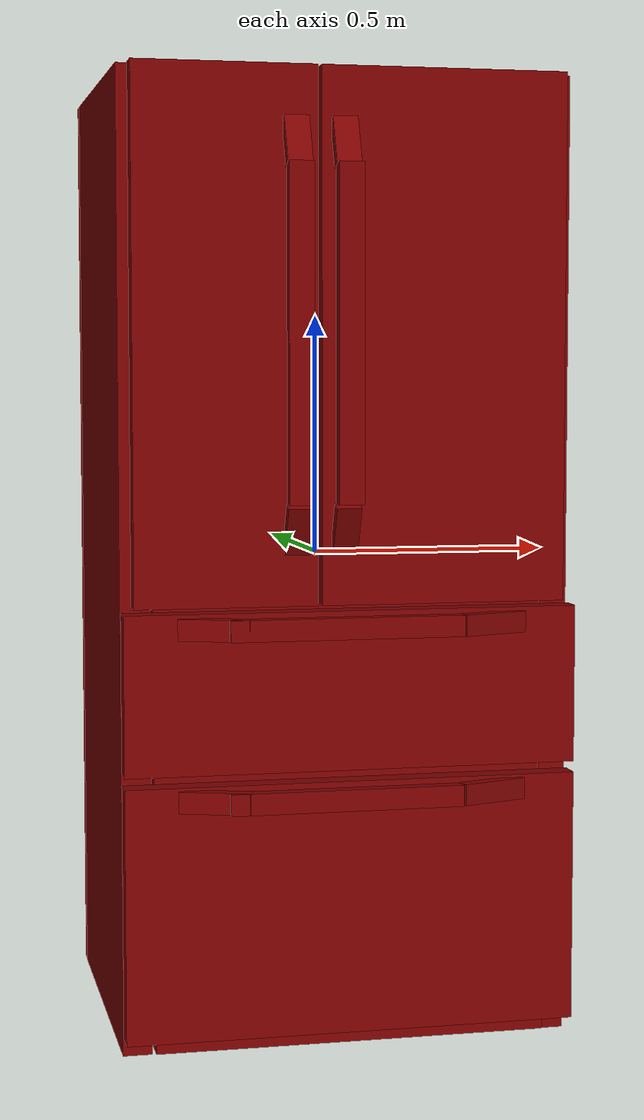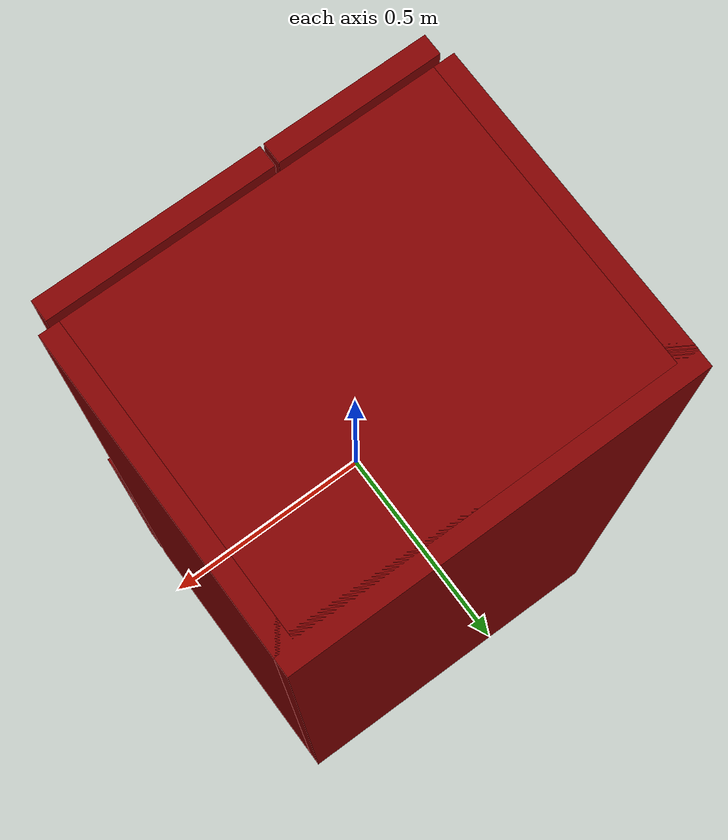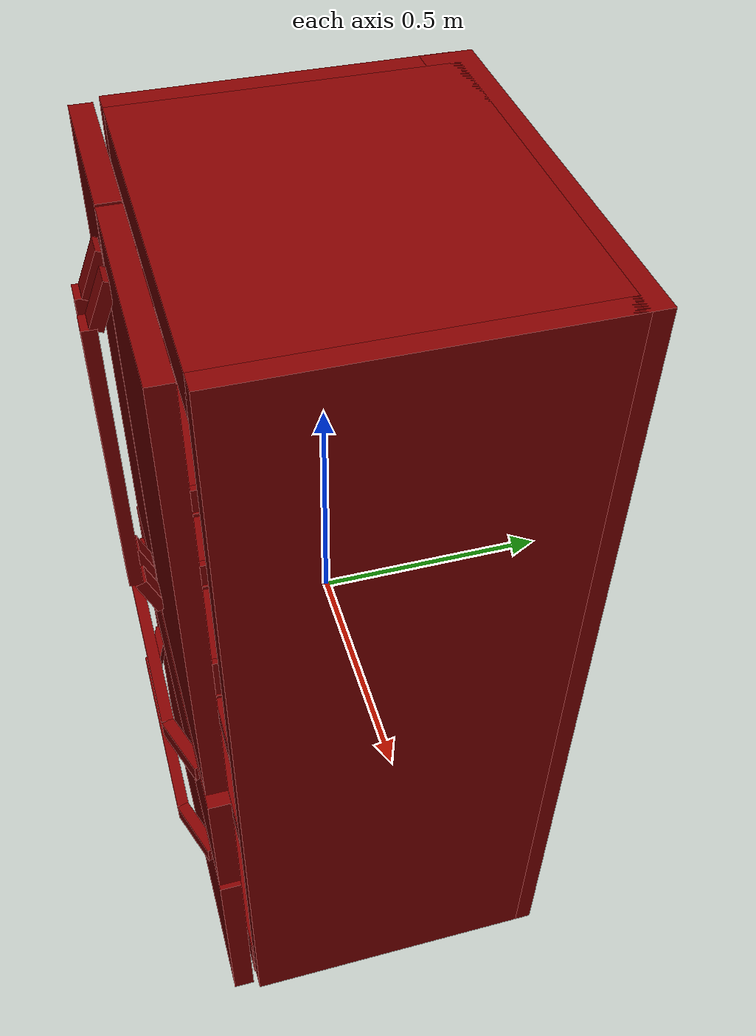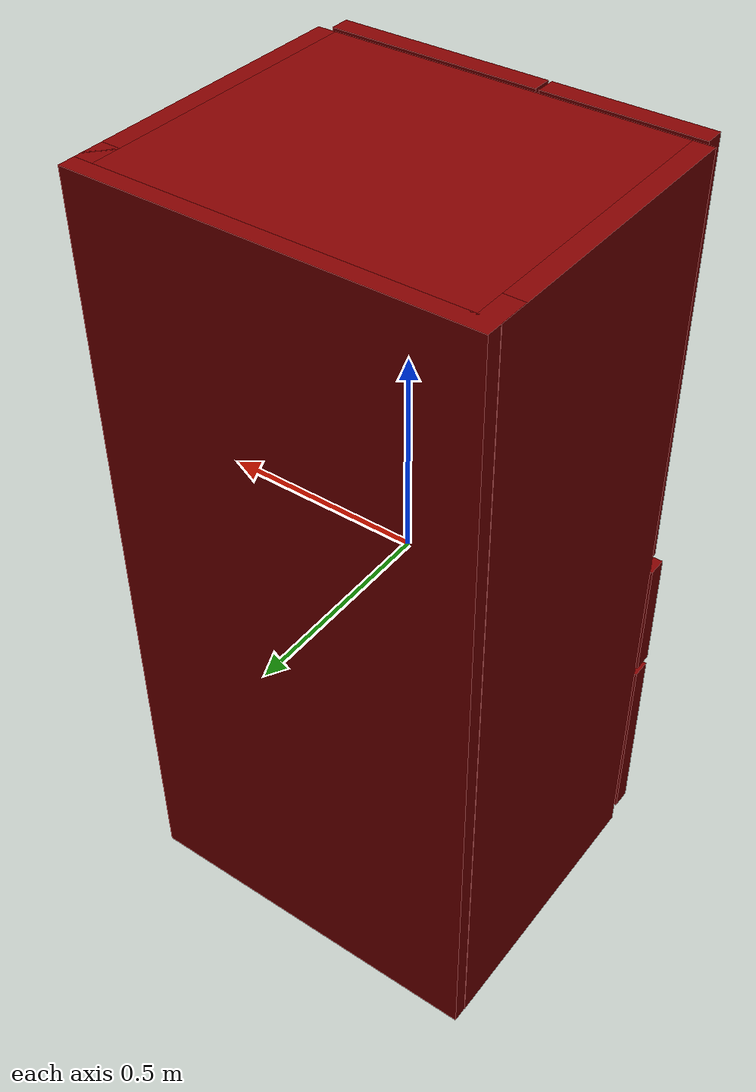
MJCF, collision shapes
<mujoco model="model">
  <compiler angle="radian"/>
  <asset>
    <mesh file="visuals/Body001.obj" name="Body001_vis"/>
    <mesh file="visuals/Body001_Clear.obj" name="Body001_Clear_vis"/>
    <mesh file="visuals/Container001.obj" name="Container001_vis"/>
    <mesh file="visuals/Container002.obj" name="Container002_vis"/>
    <mesh file="visuals/Door001.obj" name="Door001_vis"/>
    <mesh file="visuals/Door001_Clear.obj" name="Door001_Clear_vis"/>
    <mesh file="visuals/Door002.obj" name="Door002_vis"/>
    <mesh file="visuals/Door002_Clear.obj" name="Door002_Clear_vis"/>
    <mesh file="visuals/Drawer001.obj" name="Drawer001_vis"/>
    <mesh file="visuals/Drawer002.obj" name="Drawer002_vis"/>
    <texture file="visuals/T_BC001.png" name="Body001_material" type="2d"/>
    <material name="Body001_material" rgba="1 1 1 1.0" texture="Body001_material" shininess="0.141421377658844" specular="0.3103448502657381"/>
    <material name="Body001_Clear_material" rgba="0.6872242093086243 0.8047671318054199 0.805526614189148 0.2808988690376282" shininess="0.141421377658844" specular="0.3103448502657381"/>
    <texture file="visuals/T_BC001.png" name="Container001_material" type="2d"/>
    <material name="Container001_material" rgba="1 1 1 1.0" texture="Container001_material" shininess="0.141421377658844" specular="0.3103448502657381"/>
    <texture file="visuals/T_BC001.png" name="Container002_material" type="2d"/>
    <material name="Container002_material" rgba="1 1 1 1.0" texture="Container002_material" shininess="0.141421377658844" specular="0.3103448502657381"/>
    <texture file="visuals/T_BC001.png" name="Door001_material" type="2d"/>
    <material name="Door001_material" rgba="1 1 1 1.0" texture="Door001_material" shininess="0.141421377658844" specular="0.3103448502657381"/>
    <material name="Door001_Clear_material" rgba="0.6872242093086243 0.8047671318054199 0.805526614189148 0.2808988690376282" shininess="0.141421377658844" specular="0.3103448502657381"/>
    <texture file="visuals/T_BC001.png" name="Door002_material" type="2d"/>
    <material name="Door002_material" rgba="1 1 1 1.0" texture="Door002_material" shininess="0.141421377658844" specular="0.3103448502657381"/>
    <material name="Door002_Clear_material" rgba="0.6872242093086243 0.8047671318054199 0.805526614189148 0.2808988690376282" shininess="0.141421377658844" specular="0.3103448502657381"/>
    <texture file="visuals/T_BC001.png" name="Drawer001_material" type="2d"/>
    <material name="Drawer001_material" rgba="1 1 1 1.0" texture="Drawer001_material" shininess="0.141421377658844" specular="0.3103448502657381"/>
    <texture file="visuals/T_BC001.png" name="Drawer002_material" type="2d"/>
    <material name="Drawer002_material" rgba="1 1 1 1.0" texture="Drawer002_material" shininess="0.141421377658844" specular="0.3103448502657381"/>
  </asset>
  <default>
    <default class="visual">
      <geom conaffinity="0" contype="0" group="1" type="mesh"/>
    </default>
    <default class="collision">
      <geom group="0" rgba="0.5 0 0 0.5"/>
    </default>
    <default class="spawn">
      <geom group="0" rgba="1 1 1 0.5" contype="0" conaffinity="0"/>
      <site group="0" rgba="1 1 1 0.5"/>
    </default>
    <default class="region">
      <geom group="1" conaffinity="0" contype="0" rgba="0 1 0 0"/>
    </default>
  </default>
  <worldbody>
    <body>
      <body name="object">
        <geom mesh="Body001_vis" type="mesh" solimp="0.998 0.998 0.001" solref="0.001 1" density="100" friction="0.95 0.3 0.1" class="visual" material="Body001_material"/>
        <geom class="collision" type="box" pos="-0.426228 0.042858 0.000000" size="0.029605332762002945 0.3534112274646759 0.9728236794471741" quat="1.0 0.0 0.0 0.0"/>
        <geom class="collision" type="box" pos="0.428675 0.041233 -0.000000" size="0.027389300987124443 0.3517859876155853 0.9728236794471741" quat="1.0 0.0 0.0 0.0"/>
        <geom class="collision" type="box" pos="0.001378 0.041233 0.923090" size="0.41047734022140503 0.3517859876155853 0.04973379895091057" quat="1.0 0.0 0.0 0.0"/>
        <geom class="collision" type="box" pos="0.011164 0.039594 -0.900854" size="0.40069055557250977 0.3534245193004608 0.071969173848629" quat="1.0 0.0 0.0 0.0"/>
        <geom class="collision" type="box" pos="0.000511 0.377943 0.000000" size="0.4555530548095703 0.05511802062392235 0.9728236794471741" quat="1.0 0.0 0.0 0.0"/>
        <geom class="collision" type="box" pos="0.011164 0.044354 -0.086973" size="0.40069055557250977 0.34866517782211304 0.027178538963198662" quat="1.0 0.0 0.0 0.0"/>
        <geom class="collision" type="box" pos="0.011164 0.044354 -0.422489" size="0.40069055557250977 0.34866517782211304 0.03191669285297394" quat="1.0 0.0 0.0 0.0"/>
        <geom class="collision" type="box" pos="0.011164 -0.169971 0.248599" size="0.40069055557250977 0.007287968415766954 0.003665081923827529" quat="1.0 0.0 0.0 0.0"/>
        <geom class="collision" type="box" pos="0.011164 -0.169971 0.570574" size="0.40069055557250977 0.007287968415766954 0.007593526504933834" quat="1.0 0.0 0.0 0.0"/>
        <geom class="collision" type="box" pos="0.000140 0.115443 0.423252" size="0.11277630925178528 0.1857243925333023 0.008044852875173092" quat="1.0 0.0 0.0 0.0"/>
        <geom class="collision" type="box" pos="-0.149442 -0.137304 0.496726" size="0.005899970419704914 0.08722446113824844 0.0071580419316887856" quat="0.8796501159667969 -0.47562137246131897 -0.0 0.0"/>
        <geom class="collision" type="box" pos="0.149955 -0.137304 0.496726" size="0.005899970419704914 0.08722446113824844 0.0071580419316887856" quat="0.8796501159667969 -0.47562137246131897 -0.0 0.0"/>
        <body name="Body001_Clear">
          <geom mesh="Body001_Clear_vis" type="mesh" solimp="0.998 0.998 0.001" solref="0.001 1" density="100" friction="0.95 0.3 0.1" class="visual" material="Body001_Clear_material"/>
          <geom class="collision" type="box" pos="-0.001543 0.072970 0.249825" size="0.387983113527298 0.23869822919368744 0.0030660119373351336" quat="1.0 0.0 0.0 0.0"/>
          <geom class="collision" type="box" pos="0.000065 0.072970 0.572042" size="0.38637539744377136 0.23869822919368744 0.0031815222464501858" quat="1.0 0.0 0.0 0.0"/>
        </body>
        <body name="Container001">
          <joint axis="0.0 -1.0 0.0" pos="-0.210445 0.053757 0.011096" limited="true" name="Container001_joint" range="0.0 0.5" type="slide" damping="1" frictionloss="1" armature=".01" stiffness="0.05"/>
          <geom mesh="Container001_vis" type="mesh" solimp="0.998 0.998 0.001" solref="0.001 1" density="100" friction="0.95 0.3 0.1" class="visual" material="Container001_material"/>
          <geom class="collision" type="box" pos="-0.203618 0.061797 -0.052680" size="0.14834272861480713 0.21900534629821777 0.006056325510144234" quat="1.0 0.0 0.0 0.0"/>
          <geom class="collision" type="box" pos="-0.203618 0.300056 0.010038" size="0.14834271371364594 0.010062267072498798 0.06811290234327316" quat="0.9980632662773132 -0.06220714747905731 1.3812760658319826e-17 -2.86053822665894e-24"/>
          <geom class="collision" type="box" pos="-0.203618 -0.180397 0.011086" size="0.14834271371364594 0.00838586688041687 0.07160399109125137" quat="0.9852045178413391 0.17138269543647766 -3.6615682518974254e-17 -2.405807765713142e-19"/>
          <geom class="collision" type="box" pos="-0.066170 0.068536 0.010121" size="0.010894034057855606 0.23029488325119019 0.06811346858739853" quat="1.0 0.0 0.0 0.0"/>
          <geom class="collision" type="box" pos="-0.355549 0.064786 0.010417" size="0.01100264210253954 0.23404495418071747 0.06840953230857849" quat="1.0 0.0 0.0 0.0"/>
        </body>
        <body name="Container002">
          <joint axis="0.0 -1.0 0.0" pos="0.167051 0.053757 0.010132" limited="true" name="Container002_joint" range="0.0 0.5" type="slide" damping="1" frictionloss="1" armature=".01" stiffness="0.05"/>
          <geom mesh="Container002_vis" type="mesh" solimp="0.998 0.998 0.001" solref="0.001 1" density="100" friction="0.95 0.3 0.1" class="visual" material="Container002_material"/>
          <geom class="collision" type="box" pos="-0.026800 0.065866 0.009619" size="0.01053529791533947 0.2329651266336441 0.06761081516742706" quat="1.0 0.0 0.0 0.0"/>
          <geom class="collision" type="box" pos="0.360494 0.068536 0.009601" size="0.010600273497402668 0.23029488325119019 0.06759338825941086" quat="1.0 0.0 0.0 0.0"/>
          <geom class="collision" type="box" pos="0.168737 -0.182015 0.011086" size="0.2005700021982193 0.00838586688041687 0.07160399109125137" quat="0.9852721095085144 0.17099373042583466 -3.661577516320286e-17 -2.261241151563308e-19"/>
          <geom class="collision" type="box" pos="0.168737 0.300056 0.010038" size="0.2005700021982193 0.010062267072498798 0.06811290234327316" quat="0.9980632662773132 -0.06220714747905731 1.3812760658319826e-17 -2.86053822665894e-24"/>
          <geom class="collision" type="box" pos="0.168737 0.061797 -0.052680" size="0.2005700021982193 0.21900534629821777 0.006056325510144234" quat="1.0 0.0 0.0 0.0"/>
        </body>
        <body name="Door001">
          <joint axis="0.0 0.0 -1.0" pos="-0.430335 -0.350352 0.440327" limited="true" name="Door001_joint" range="0.0 1.5707963267948966" type="hinge" damping="1" frictionloss="1" armature=".01" stiffness="0.05"/>
          <geom mesh="Door001_vis" type="mesh" solimp="0.998 0.998 0.001" solref="0.001 1" density="100" friction="0.95 0.3 0.1" class="visual" material="Door001_material"/>
          <geom class="collision" type="box" pos="-0.253712 -0.347900 0.449269" size="0.1814473271369934 0.023474177345633507 0.5234969854354858" quat="1.0 0.0 0.0 0.0"/>
          <geom class="collision" type="box" pos="-0.116126 -0.418600 0.455542" size="0.024617472663521767 0.013880615122616291 0.3281586468219757" quat="1.0 0.0 0.0 0.0"/>
          <geom class="collision" type="box" pos="-0.116126 -0.388403 0.823486" size="0.02462036907672882 0.01352567970752716 0.049802325665950775" quat="0.9809927344322205 -0.19404448568820953 4.308653777996428e-17 -5.087527271977686e-24"/>
          <geom class="collision" type="box" pos="-0.116126 -0.391065 0.078423" size="0.024620363488793373 0.013525689952075481 0.04980230703949928" quat="3.0794979011261603e-07 -6.091376292260975e-08 -0.19404451549053192 0.9809927344322205"/>
          <body name="Door001_Clear">
            <geom mesh="Door001_Clear_vis" type="mesh" solimp="0.998 0.998 0.001" solref="0.001 1" density="100" friction="0.95 0.3 0.1" class="visual" material="Door001_Clear_material"/>
            <geom class="collision" type="box" pos="-0.261339 -0.286152 0.647797" size="0.11234426498413086 0.0492464080452919 0.003341684117913246" quat="1.0 0.0 0.0 0.0"/>
            <geom class="collision" type="box" pos="-0.159715 -0.280382 0.674422" size="0.006390671711415052 0.05501607805490494 0.024759508669376373" quat="1.0 0.0 0.0 0.0"/>
            <geom class="collision" type="box" pos="-0.366946 -0.280382 0.674422" size="0.004815603140741587 0.055013108998537064 0.024759508669376373" quat="1.0 0.0 0.0 0.0"/>
            <geom class="collision" type="box" pos="-0.270060 -0.227461 0.674422" size="0.10496816039085388 0.00403837114572525 0.024759508669376373" quat="1.0 0.0 0.0 0.0"/>
            <geom class="collision" type="box" pos="-0.270060 -0.227461 0.497155" size="0.10496816039085388 0.00403837114572525 0.024759508669376373" quat="1.0 0.0 0.0 0.0"/>
            <geom class="collision" type="box" pos="-0.366946 -0.280382 0.497155" size="0.004815603140741587 0.05501335859298706 0.024759508669376373" quat="1.0 0.0 0.0 0.0"/>
            <geom class="collision" type="box" pos="-0.159715 -0.280382 0.497155" size="0.006390688940882683 0.05501607805490494 0.024759508669376373" quat="1.0 0.0 0.0 0.0"/>
            <geom class="collision" type="box" pos="-0.261339 -0.286152 0.470530" size="0.11234426498413086 0.0492464080452919 0.003341684117913246" quat="1.0 0.0 0.0 0.0"/>
            <geom class="collision" type="box" pos="-0.261339 -0.286152 0.152735" size="0.11234426498413086 0.0492464080452919 0.0033416731748729944" quat="1.0 0.0 0.0 0.0"/>
            <geom class="collision" type="box" pos="-0.159715 -0.280382 0.203399" size="0.006390688940882683 0.05501607805490494 0.048799291253089905" quat="1.0 0.0 0.0 0.0"/>
            <geom class="collision" type="box" pos="-0.366946 -0.280382 0.203399" size="0.004815603140741587 0.055013787001371384 0.048799291253089905" quat="1.0 0.0 0.0 0.0"/>
            <geom class="collision" type="box" pos="-0.270060 -0.227461 0.203399" size="0.10496823489665985 0.00403837114572525 0.048799291253089905" quat="1.0 0.0 0.0 0.0"/>
          </body>
        </body>
        <body name="Door002">
          <joint axis="0.0 0.0 1.0" pos="0.425625 -0.346621 0.440327" limited="true" name="Door002_joint" range="0.0 1.5707963267948966" type="hinge" damping="1" frictionloss="1" armature=".01" stiffness="0.05"/>
          <geom mesh="Door002_vis" type="mesh" solimp="0.998 0.998 0.001" solref="0.001 1" density="100" friction="0.95 0.3 0.1" class="visual" material="Door002_material"/>
          <geom class="collision" type="box" pos="-0.018771 -0.419582 0.455542" size="0.0251767598092556 0.0148626072332263 0.32815948128700256" quat="1.0 0.0 0.0 0.0"/>
          <geom class="collision" type="box" pos="0.183201 -0.347900 0.449269" size="0.24733802676200867 0.023474089801311493 0.5235017538070679" quat="1.0 0.0 0.0 0.0"/>
          <geom class="collision" type="box" pos="-0.020416 -0.391065 0.078423" size="0.024620365351438522 0.013525689952075481 0.049802325665950775" quat="3.0794979011261603e-07 -6.091376292260975e-08 -0.19404451549053192 0.9809927344322205"/>
          <geom class="collision" type="box" pos="-0.020416 -0.388403 0.823486" size="0.024620365351438522 0.01352567970752716 0.049802325665950775" quat="0.9809927344322205 -0.19404448568820953 4.308653777996428e-17 -5.087527271977686e-24"/>
          <body name="Door002_Clear">
            <geom mesh="Door002_Clear_vis" type="mesh" solimp="0.998 0.998 0.001" solref="0.001 1" density="100" friction="0.95 0.3 0.1" class="visual" material="Door002_Clear_material"/>
            <geom class="collision" type="box" pos="0.189785 -0.286152 0.470530" size="0.17621146142482758 0.0492464080452919 0.003341684117913246" quat="1.0 0.0 0.0 0.0"/>
            <geom class="collision" type="box" pos="0.355277 -0.280382 0.497155" size="0.006390671711415052 0.05501607805490494 0.024759508669376373" quat="1.0 0.0 0.0 0.0"/>
            <geom class="collision" type="box" pos="0.020311 -0.280382 0.497155" size="0.004815617576241493 0.05501411855220795 0.024759508669376373" quat="1.0 0.0 0.0 0.0"/>
            <geom class="collision" type="box" pos="0.181064 -0.227461 0.497155" size="0.1688341498374939 0.00403837114572525 0.024759508669376373" quat="1.0 0.0 0.0 0.0"/>
            <geom class="collision" type="box" pos="0.181064 -0.227461 0.674422" size="0.1688341647386551 0.00403837114572525 0.024759508669376373" quat="1.0 0.0 0.0 0.0"/>
            <geom class="collision" type="box" pos="0.020311 -0.280382 0.674422" size="0.004815617576241493 0.055014368146657944 0.024759508669376373" quat="1.0 0.0 0.0 0.0"/>
            <geom class="collision" type="box" pos="0.355277 -0.280382 0.674422" size="0.006390671711415052 0.05501607805490494 0.024759508669376373" quat="1.0 0.0 0.0 0.0"/>
            <geom class="collision" type="box" pos="0.181064 -0.227461 0.203399" size="0.16883422434329987 0.00403837114572525 0.048799291253089905" quat="1.0 0.0 0.0 0.0"/>
            <geom class="collision" type="box" pos="0.020311 -0.280382 0.203399" size="0.004815618973225355 0.055014628916978836 0.048799291253089905" quat="1.0 0.0 0.0 0.0"/>
            <geom class="collision" type="box" pos="0.355277 -0.280382 0.203399" size="0.006390705704689026 0.05501607805490494 0.048799291253089905" quat="1.0 0.0 0.0 0.0"/>
            <geom class="collision" type="box" pos="0.189785 -0.286152 0.647797" size="0.17621146142482758 0.0492464080452919 0.003341684117913246" quat="1.0 0.0 0.0 0.0"/>
            <geom class="collision" type="box" pos="0.189785 -0.286152 0.155606" size="0.17621146142482758 0.0492464080452919 0.0033416731748729944" quat="1.0 0.0 0.0 0.0"/>
          </body>
        </body>
        <body name="Drawer001">
          <joint axis="0.0 -1.0 0.0" pos="0.000083 -0.083415 -0.231651" limited="true" name="Drawer001_joint" range="0.0 0.3" type="slide" damping="1" frictionloss="1" armature=".01" stiffness="0.05"/>
          <geom mesh="Drawer001_vis" type="mesh" solimp="0.998 0.998 0.001" solref="0.001 1" density="100" friction="0.95 0.3 0.1" class="visual" material="Drawer001_material"/>
          <geom class="collision" type="box" pos="-0.007894 0.243957 -0.272744" size="0.3464532792568207 0.01158692967146635 0.11446794122457504" quat="0.9995784759521484 -0.029031701385974884 -1.2537097606891572e-17 3.4457265656116787e-19"/>
          <geom class="collision" type="box" pos="-0.351054 -0.009950 -0.272733" size="0.015384908765554428 0.2631329596042633 0.11438349634408951" quat="1.0 0.0 0.0 0.0"/>
          <geom class="collision" type="box" pos="0.346425 -0.009950 -0.272743" size="0.014450441114604473 0.2631418704986572 0.1138586774468422" quat="1.0 0.0 0.0 0.0"/>
          <geom class="collision" type="box" pos="0.000826 -0.015719 -0.372943" size="0.3538326621055603 0.2573722004890442 0.01507387962192297" quat="1.0 0.0 0.0 0.0"/>
          <geom class="collision" type="box" pos="0.000115 -0.348626 -0.243995" size="0.45594871044158936 0.02427990362048149 0.15896204113960266" quat="1.0 0.0 0.0 0.0"/>
          <geom class="collision" type="box" pos="-0.021681 -0.412377 -0.114485" size="0.23359550535678864 0.013415376655757427 0.02128618024289608" quat="1.0 0.0 0.0 0.0"/>
          <geom class="collision" type="box" pos="0.278387 -0.390337 -0.114485" size="0.07090720534324646 0.013639247044920921 0.02128618024289608" quat="0.9866302013397217 0.0 0.0 0.16297516226768494"/>
          <geom class="collision" type="box" pos="-0.279994 -0.390337 -0.114485" size="0.07090721279382706 0.013639247044920921 0.02128618024289608" quat="3.0971946785030013e-07 0.9866302013397217 -0.16297516226768494 -5.1160586878040704e-08"/>
        </body>
        <body name="Drawer002">
          <joint axis="0.0 -1.0 0.0" pos="0.000083 -0.122973 -0.633051" limited="true" name="Drawer002_joint" range="0.0 0.3" type="slide" damping="1" frictionloss="1" armature=".01" stiffness="0.05"/>
          <geom mesh="Drawer002_vis" type="mesh" solimp="0.998 0.998 0.001" solref="0.001 1" density="100" friction="0.95 0.3 0.1" class="visual" material="Drawer002_material"/>
          <geom class="collision" type="box" pos="-0.007894 0.094197 -0.659203" size="0.3464532792568207 0.012335081584751606 0.1701451539993286" quat="0.9852511882781982 -0.17111438512802124 -1.6719975429462985e-17 -2.6411181610115746e-19"/>
          <geom class="collision" type="box" pos="-0.350753 -0.077201 -0.657262" size="0.014440087601542473 0.1958874613046646 0.15775400400161743" quat="1.0 0.0 0.0 0.0"/>
          <geom class="collision" type="box" pos="0.346756 -0.077201 -0.657389" size="0.014201557263731956 0.19589023292064667 0.15762756764888763" quat="1.0 0.0 0.0 0.0"/>
          <geom class="collision" type="box" pos="0.000826 -0.119608 -0.805847" size="0.3538326621055603 0.15348327159881592 0.01437593437731266" quat="1.0 0.0 0.0 0.0"/>
          <geom class="collision" type="box" pos="0.000115 -0.348626 -0.679606" size="0.45594871044158936 0.02427990362048149 0.2544715106487274" quat="1.0 0.0 0.0 0.0"/>
          <geom class="collision" type="box" pos="-0.021681 -0.412377 -0.453228" size="0.2335955798625946 0.013415376655757427 0.02128618024289608" quat="1.0 0.0 0.0 0.0"/>
          <geom class="collision" type="box" pos="-0.279994 -0.390337 -0.452613" size="0.07090720534324646 0.013639247044920921 0.02128618024289608" quat="3.0971946785030013e-07 0.9866302013397217 -0.16297516226768494 -5.1160586878040704e-08"/>
          <geom class="collision" type="box" pos="0.278387 -0.390337 -0.452613" size="0.07090720534324646 0.013639247044920921 0.02128618024289608" quat="0.9866302013397217 0.0 0.0 0.16297516226768494"/>
        </body>
        <geom class="region" name="reg_main" type="box" pos="0.00011550000000001837 0.029906499999999975 0.0" size="0.4559485 0.40315449999999997 0.972824"/>
      </body>
    </body>
  </worldbody>
  <actuator>
    <motor name="Container001_joint_actuator" joint="Container001_joint" gear="10"/>
    <motor name="Container002_joint_actuator" joint="Container002_joint" gear="10"/>
    <motor name="Door001_joint_actuator" joint="Door001_joint" gear="50"/>
    <motor name="Door002_joint_actuator" joint="Door002_joint" gear="50"/>
    <motor name="Drawer001_joint_actuator" joint="Drawer001_joint" gear="50"/>
    <motor name="Drawer002_joint_actuator" joint="Drawer002_joint" gear="50"/>
  </actuator>
</mujoco>
